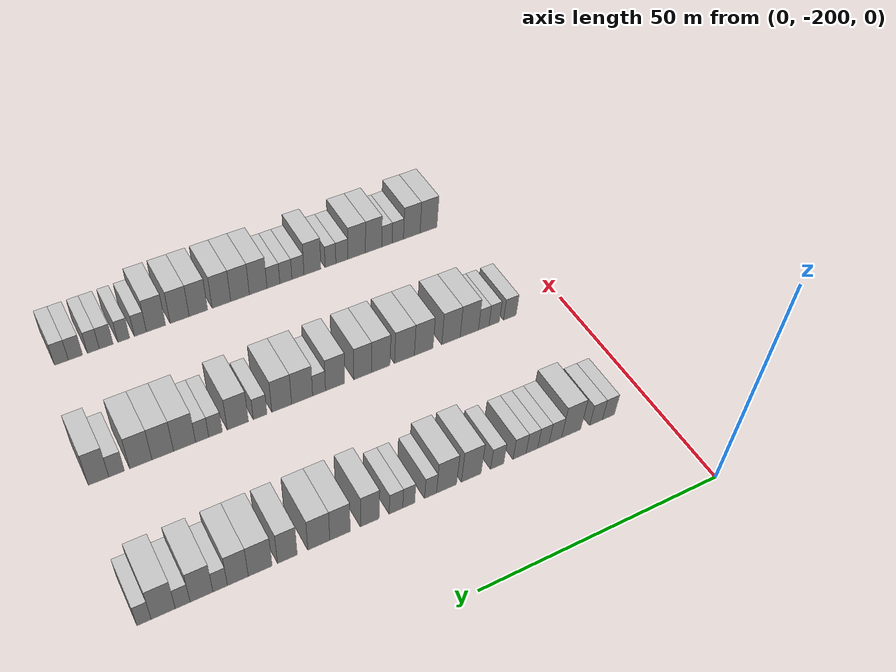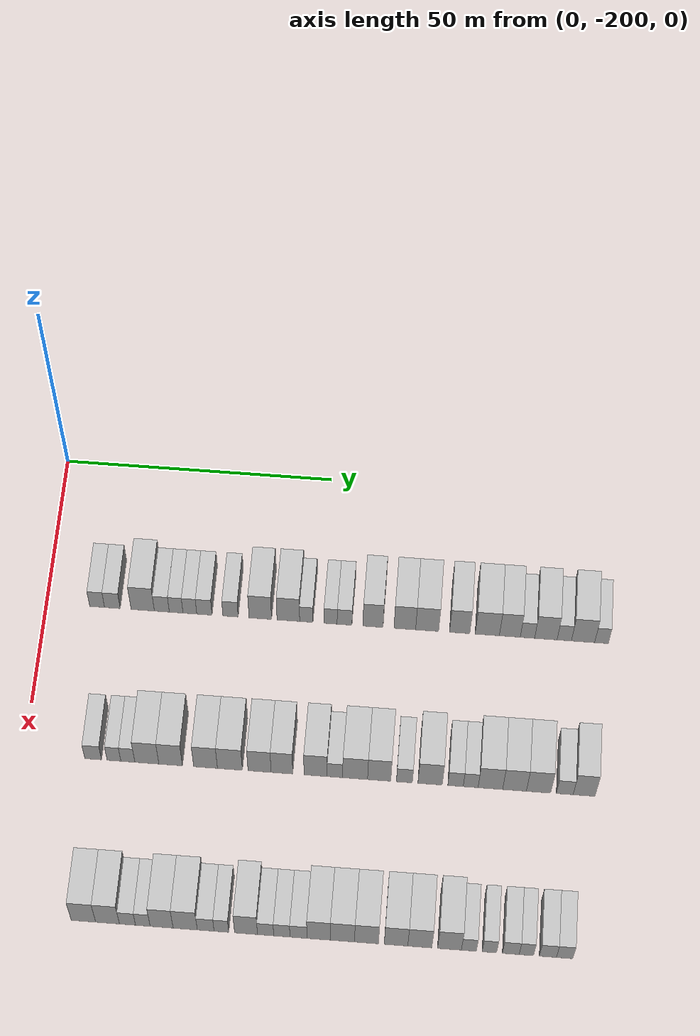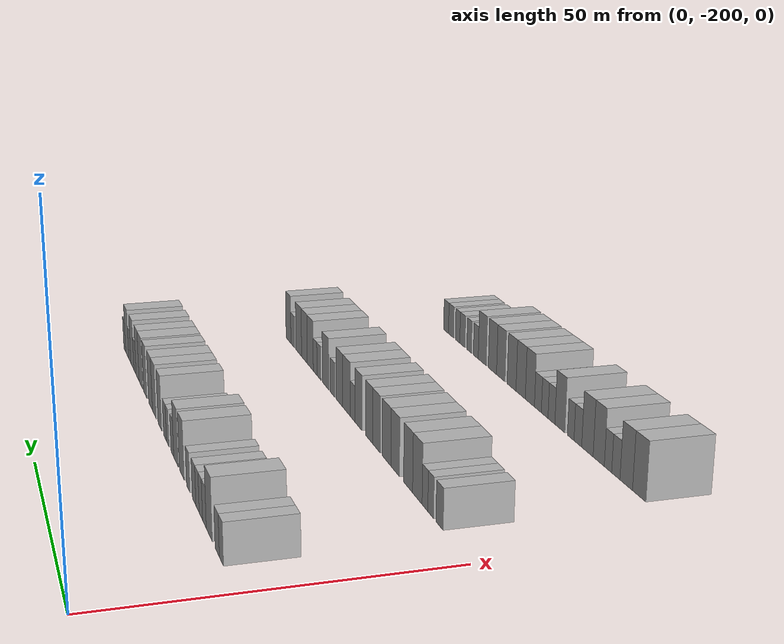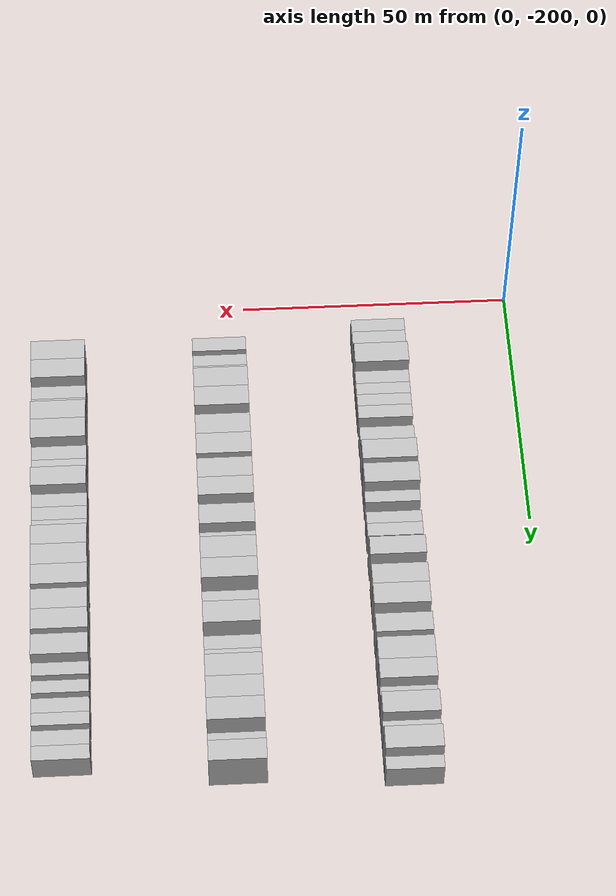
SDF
<sdf version="1.6">
 <world name="default">
  <model name="building_23">
   <static>1</static>
   <pose>25.0000 -190.7034 0 0.000000 0.000000 0.000000</pose>
   <link name="link">
    <pose>0 0 3.00 0 0 0</pose>
    <collision name="collision"><geometry><box><size>10.0000 2.7444 6.0000</size></box></geometry></collision>
    <visual name="visual">
     <cast_shadows>0</cast_shadows>
     <geometry><box><size>10.0000 2.7444 6.0000</size></box></geometry>
     <material>
      <script>
       <uri>model://HANNAS_wall/materials/scripts</uri>
       <uri>model://HANNAS_wall/materials/textures</uri>
       <name>vrc/HANNAS_wall</name>
      </script>
     </material>
    </visual>
   </link>
  </model>
  <model name="building_24">
   <static>1</static>
   <pose>25.0000 -187.8845 0 0.000000 0.000000 0.000000</pose>
   <link name="link">
    <pose>0 0 3.00 0 0 0</pose>
    <collision name="collision"><geometry><box><size>10.0000 2.8935 6.0000</size></box></geometry></collision>
    <visual name="visual">
     <cast_shadows>0</cast_shadows>
     <geometry><box><size>10.0000 2.8935 6.0000</size></box></geometry>
     <material>
      <script>
       <uri>model://HANNAS_wall/materials/scripts</uri>
       <uri>model://HANNAS_wall/materials/textures</uri>
       <name>vrc/HANNAS_wall</name>
      </script>
     </material>
    </visual>
   </link>
  </model>
  <model name="building_25">
   <static>1</static>
   <pose>25.0000 -182.2950 0 0.000000 0.000000 0.000000</pose>
   <link name="link">
    <pose>0 0 4.50 0 0 0</pose>
    <collision name="collision"><geometry><box><size>10.0000 4.2855 9.0000</size></box></geometry></collision>
    <visual name="visual">
     <cast_shadows>0</cast_shadows>
     <geometry><box><size>10.0000 4.2855 9.0000</size></box></geometry>
     <material>
      <script>
       <uri>model://HANNAS_wall/materials/scripts</uri>
       <uri>model://HANNAS_wall/materials/textures</uri>
       <name>vrc/HANNAS_wall</name>
      </script>
     </material>
    </visual>
   </link>
  </model>
  <model name="building_26">
   <static>1</static>
   <pose>25.0000 -178.7740 0 0.000000 0.000000 0.000000</pose>
   <link name="link">
    <pose>0 0 3.00 0 0 0</pose>
    <collision name="collision"><geometry><box><size>10.0000 2.7564 6.0000</size></box></geometry></collision>
    <visual name="visual">
     <cast_shadows>0</cast_shadows>
     <geometry><box><size>10.0000 2.7564 6.0000</size></box></geometry>
     <material>
      <script>
       <uri>model://HANNAS_wall/materials/scripts</uri>
       <uri>model://HANNAS_wall/materials/textures</uri>
       <name>vrc/HANNAS_wall</name>
      </script>
     </material>
    </visual>
   </link>
  </model>
  <model name="building_27">
   <static>1</static>
   <pose>25.0000 -176.1398 0 0.000000 0.000000 0.000000</pose>
   <link name="link">
    <pose>0 0 3.00 0 0 0</pose>
    <collision name="collision"><geometry><box><size>10.0000 2.5118 6.0000</size></box></geometry></collision>
    <visual name="visual">
     <cast_shadows>0</cast_shadows>
     <geometry><box><size>10.0000 2.5118 6.0000</size></box></geometry>
     <material>
      <script>
       <uri>model://HANNAS_wall/materials/scripts</uri>
       <uri>model://HANNAS_wall/materials/textures</uri>
       <name>vrc/HANNAS_wall</name>
      </script>
     </material>
    </visual>
   </link>
  </model>
  <model name="building_28">
   <static>1</static>
   <pose>25.0000 -173.6152 0 0.000000 0.000000 0.000000</pose>
   <link name="link">
    <pose>0 0 3.00 0 0 0</pose>
    <collision name="collision"><geometry><box><size>10.0000 2.5375 6.0000</size></box></geometry></collision>
    <visual name="visual">
     <cast_shadows>0</cast_shadows>
     <geometry><box><size>10.0000 2.5375 6.0000</size></box></geometry>
     <material>
      <script>
       <uri>model://HANNAS_wall/materials/scripts</uri>
       <uri>model://HANNAS_wall/materials/textures</uri>
       <name>vrc/HANNAS_wall</name>
      </script>
     </material>
    </visual>
   </link>
  </model>
  <model name="building_29">
   <static>1</static>
   <pose>25.0000 -170.9428 0 0.000000 0.000000 0.000000</pose>
   <link name="link">
    <pose>0 0 3.00 0 0 0</pose>
    <collision name="collision"><geometry><box><size>10.0000 2.8074 6.0000</size></box></geometry></collision>
    <visual name="visual">
     <cast_shadows>0</cast_shadows>
     <geometry><box><size>10.0000 2.8074 6.0000</size></box></geometry>
     <material>
      <script>
       <uri>model://HANNAS_wall/materials/scripts</uri>
       <uri>model://HANNAS_wall/materials/textures</uri>
       <name>vrc/HANNAS_wall</name>
      </script>
     </material>
    </visual>
   </link>
  </model>
  <model name="building_30">
   <static>1</static>
   <pose>25.0000 -166.1350 0 0.000000 0.000000 0.000000</pose>
   <link name="link">
    <pose>0 0 3.00 0 0 0</pose>
    <collision name="collision"><geometry><box><size>10.0000 2.8080 6.0000</size></box></geometry></collision>
    <visual name="visual">
     <cast_shadows>0</cast_shadows>
     <geometry><box><size>10.0000 2.8080 6.0000</size></box></geometry>
     <material>
      <script>
       <uri>model://HANNAS_wall/materials/scripts</uri>
       <uri>model://HANNAS_wall/materials/textures</uri>
       <name>vrc/HANNAS_wall</name>
      </script>
     </material>
    </visual>
   </link>
  </model>
  <model name="building_31">
   <static>1</static>
   <pose>25.0000 -160.6640 0 0.000000 0.000000 0.000000</pose>
   <link name="link">
    <pose>0 0 4.50 0 0 0</pose>
    <collision name="collision"><geometry><box><size>10.0000 4.1341 9.0000</size></box></geometry></collision>
    <visual name="visual">
     <cast_shadows>0</cast_shadows>
     <geometry><box><size>10.0000 4.1341 9.0000</size></box></geometry>
     <material>
      <script>
       <uri>model://HANNAS_wall/materials/scripts</uri>
       <uri>model://HANNAS_wall/materials/textures</uri>
       <name>vrc/HANNAS_wall</name>
      </script>
     </material>
    </visual>
   </link>
  </model>
  <model name="building_32">
   <static>1</static>
   <pose>25.0000 -155.5202 0 0.000000 0.000000 0.000000</pose>
   <link name="link">
    <pose>0 0 4.50 0 0 0</pose>
    <collision name="collision"><geometry><box><size>10.0000 4.1533 9.0000</size></box></geometry></collision>
    <visual name="visual">
     <cast_shadows>0</cast_shadows>
     <geometry><box><size>10.0000 4.1533 9.0000</size></box></geometry>
     <material>
      <script>
       <uri>model://HANNAS_wall/materials/scripts</uri>
       <uri>model://HANNAS_wall/materials/textures</uri>
       <name>vrc/HANNAS_wall</name>
      </script>
     </material>
    </visual>
   </link>
  </model>
  <model name="building_33">
   <static>1</static>
   <pose>25.0000 -152.2202 0 0.000000 0.000000 0.000000</pose>
   <link name="link">
    <pose>0 0 3.00 0 0 0</pose>
    <collision name="collision"><geometry><box><size>10.0000 2.4468 6.0000</size></box></geometry></collision>
    <visual name="visual">
     <cast_shadows>0</cast_shadows>
     <geometry><box><size>10.0000 2.4468 6.0000</size></box></geometry>
     <material>
      <script>
       <uri>model://HANNAS_wall/materials/scripts</uri>
       <uri>model://HANNAS_wall/materials/textures</uri>
       <name>vrc/HANNAS_wall</name>
      </script>
     </material>
    </visual>
   </link>
  </model>
  <model name="building_34">
   <static>1</static>
   <pose>25.0000 -147.7847 0 0.000000 0.000000 0.000000</pose>
   <link name="link">
    <pose>0 0 3.00 0 0 0</pose>
    <collision name="collision"><geometry><box><size>10.0000 2.4242 6.0000</size></box></geometry></collision>
    <visual name="visual">
     <cast_shadows>0</cast_shadows>
     <geometry><box><size>10.0000 2.4242 6.0000</size></box></geometry>
     <material>
      <script>
       <uri>model://HANNAS_wall/materials/scripts</uri>
       <uri>model://HANNAS_wall/materials/textures</uri>
       <name>vrc/HANNAS_wall</name>
      </script>
     </material>
    </visual>
   </link>
  </model>
  <model name="building_35">
   <static>1</static>
   <pose>25.0000 -145.2137 0 0.000000 0.000000 0.000000</pose>
   <link name="link">
    <pose>0 0 3.00 0 0 0</pose>
    <collision name="collision"><geometry><box><size>10.0000 2.7177 6.0000</size></box></geometry></collision>
    <visual name="visual">
     <cast_shadows>0</cast_shadows>
     <geometry><box><size>10.0000 2.7177 6.0000</size></box></geometry>
     <material>
      <script>
       <uri>model://HANNAS_wall/materials/scripts</uri>
       <uri>model://HANNAS_wall/materials/textures</uri>
       <name>vrc/HANNAS_wall</name>
      </script>
     </material>
    </visual>
   </link>
  </model>
  <model name="building_36">
   <static>1</static>
   <pose>25.0000 -140.0090 0 0.000000 0.000000 0.000000</pose>
   <link name="link">
    <pose>0 0 4.50 0 0 0</pose>
    <collision name="collision"><geometry><box><size>10.0000 3.6917 9.0000</size></box></geometry></collision>
    <visual name="visual">
     <cast_shadows>0</cast_shadows>
     <geometry><box><size>10.0000 3.6917 9.0000</size></box></geometry>
     <material>
      <script>
       <uri>model://HANNAS_wall/materials/scripts</uri>
       <uri>model://HANNAS_wall/materials/textures</uri>
       <name>vrc/HANNAS_wall</name>
      </script>
     </material>
    </visual>
   </link>
  </model>
  <model name="building_37">
   <static>1</static>
   <pose>25.0000 -134.1847 0 0.000000 0.000000 0.000000</pose>
   <link name="link">
    <pose>0 0 4.50 0 0 0</pose>
    <collision name="collision"><geometry><box><size>10.0000 3.9570 9.0000</size></box></geometry></collision>
    <visual name="visual">
     <cast_shadows>0</cast_shadows>
     <geometry><box><size>10.0000 3.9570 9.0000</size></box></geometry>
     <material>
      <script>
       <uri>model://HANNAS_wall/materials/scripts</uri>
       <uri>model://HANNAS_wall/materials/textures</uri>
       <name>vrc/HANNAS_wall</name>
      </script>
     </material>
    </visual>
   </link>
  </model>
  <model name="building_38">
   <static>1</static>
   <pose>25.0000 -130.1100 0 0.000000 0.000000 0.000000</pose>
   <link name="link">
    <pose>0 0 4.50 0 0 0</pose>
    <collision name="collision"><geometry><box><size>10.0000 4.1923 9.0000</size></box></geometry></collision>
    <visual name="visual">
     <cast_shadows>0</cast_shadows>
     <geometry><box><size>10.0000 4.1923 9.0000</size></box></geometry>
     <material>
      <script>
       <uri>model://HANNAS_wall/materials/scripts</uri>
       <uri>model://HANNAS_wall/materials/textures</uri>
       <name>vrc/HANNAS_wall</name>
      </script>
     </material>
    </visual>
   </link>
  </model>
  <model name="building_39">
   <static>1</static>
   <pose>25.0000 -124.1673 0 0.000000 0.000000 0.000000</pose>
   <link name="link">
    <pose>0 0 4.50 0 0 0</pose>
    <collision name="collision"><geometry><box><size>10.0000 3.6933 9.0000</size></box></geometry></collision>
    <visual name="visual">
     <cast_shadows>0</cast_shadows>
     <geometry><box><size>10.0000 3.6933 9.0000</size></box></geometry>
     <material>
      <script>
       <uri>model://HANNAS_wall/materials/scripts</uri>
       <uri>model://HANNAS_wall/materials/textures</uri>
       <name>vrc/HANNAS_wall</name>
      </script>
     </material>
    </visual>
   </link>
  </model>
  <model name="building_40">
   <static>1</static>
   <pose>25.0000 -119.1183 0 0.000000 0.000000 0.000000</pose>
   <link name="link">
    <pose>0 0 4.50 0 0 0</pose>
    <collision name="collision"><geometry><box><size>10.0000 4.4046 9.0000</size></box></geometry></collision>
    <visual name="visual">
     <cast_shadows>0</cast_shadows>
     <geometry><box><size>10.0000 4.4046 9.0000</size></box></geometry>
     <material>
      <script>
       <uri>model://HANNAS_wall/materials/scripts</uri>
       <uri>model://HANNAS_wall/materials/textures</uri>
       <name>vrc/HANNAS_wall</name>
      </script>
     </material>
    </visual>
   </link>
  </model>
  <model name="building_41">
   <static>1</static>
   <pose>25.0000 -115.0124 0 0.000000 0.000000 0.000000</pose>
   <link name="link">
    <pose>0 0 4.50 0 0 0</pose>
    <collision name="collision"><geometry><box><size>10.0000 3.8073 9.0000</size></box></geometry></collision>
    <visual name="visual">
     <cast_shadows>0</cast_shadows>
     <geometry><box><size>10.0000 3.8073 9.0000</size></box></geometry>
     <material>
      <script>
       <uri>model://HANNAS_wall/materials/scripts</uri>
       <uri>model://HANNAS_wall/materials/textures</uri>
       <name>vrc/HANNAS_wall</name>
      </script>
     </material>
    </visual>
   </link>
  </model>
  <model name="building_42">
   <static>1</static>
   <pose>25.0000 -111.7990 0 0.000000 0.000000 0.000000</pose>
   <link name="link">
    <pose>0 0 3.00 0 0 0</pose>
    <collision name="collision"><geometry><box><size>10.0000 2.6195 6.0000</size></box></geometry></collision>
    <visual name="visual">
     <cast_shadows>0</cast_shadows>
     <geometry><box><size>10.0000 2.6195 6.0000</size></box></geometry>
     <material>
      <script>
       <uri>model://HANNAS_wall/materials/scripts</uri>
       <uri>model://HANNAS_wall/materials/textures</uri>
       <name>vrc/HANNAS_wall</name>
      </script>
     </material>
    </visual>
   </link>
  </model>
  <model name="building_43">
   <static>1</static>
   <pose>25.0000 -108.4423 0 0.000000 0.000000 0.000000</pose>
   <link name="link">
    <pose>0 0 4.50 0 0 0</pose>
    <collision name="collision"><geometry><box><size>10.0000 4.0939 9.0000</size></box></geometry></collision>
    <visual name="visual">
     <cast_shadows>0</cast_shadows>
     <geometry><box><size>10.0000 4.0939 9.0000</size></box></geometry>
     <material>
      <script>
       <uri>model://HANNAS_wall/materials/scripts</uri>
       <uri>model://HANNAS_wall/materials/textures</uri>
       <name>vrc/HANNAS_wall</name>
      </script>
     </material>
    </visual>
   </link>
  </model>
  <model name="building_44">
   <static>1</static>
   <pose>25.0000 -105.0941 0 0.000000 0.000000 0.000000</pose>
   <link name="link">
    <pose>0 0 3.00 0 0 0</pose>
    <collision name="collision"><geometry><box><size>10.0000 2.6026 6.0000</size></box></geometry></collision>
    <visual name="visual">
     <cast_shadows>0</cast_shadows>
     <geometry><box><size>10.0000 2.6026 6.0000</size></box></geometry>
     <material>
      <script>
       <uri>model://HANNAS_wall/materials/scripts</uri>
       <uri>model://HANNAS_wall/materials/textures</uri>
       <name>vrc/HANNAS_wall</name>
      </script>
     </material>
    </visual>
   </link>
  </model>
  <model name="building_45">
   <static>1</static>
   <pose>25.0000 -101.6720 0 0.000000 0.000000 0.000000</pose>
   <link name="link">
    <pose>0 0 4.50 0 0 0</pose>
    <collision name="collision"><geometry><box><size>10.0000 4.2416 9.0000</size></box></geometry></collision>
    <visual name="visual">
     <cast_shadows>0</cast_shadows>
     <geometry><box><size>10.0000 4.2416 9.0000</size></box></geometry>
     <material>
      <script>
       <uri>model://HANNAS_wall/materials/scripts</uri>
       <uri>model://HANNAS_wall/materials/textures</uri>
       <name>vrc/HANNAS_wall</name>
      </script>
     </material>
    </visual>
   </link>
  </model>
  <model name="building_46">
   <static>1</static>
   <pose>25.0000 -98.3125 0 0.000000 0.000000 0.000000</pose>
   <link name="link">
    <pose>0 0 3.00 0 0 0</pose>
    <collision name="collision"><geometry><box><size>10.0000 2.4775 6.0000</size></box></geometry></collision>
    <visual name="visual">
     <cast_shadows>0</cast_shadows>
     <geometry><box><size>10.0000 2.4775 6.0000</size></box></geometry>
     <material>
      <script>
       <uri>model://HANNAS_wall/materials/scripts</uri>
       <uri>model://HANNAS_wall/materials/textures</uri>
       <name>vrc/HANNAS_wall</name>
      </script>
     </material>
    </visual>
   </link>
  </model>
  <model name="building_165">
   <static>1</static>
   <pose>55.0000 -187.7114 0 0.000000 0.000000 0.000000</pose>
   <link name="link">
    <pose>0 0 3.00 0 0 0</pose>
    <collision name="collision"><geometry><box><size>10.0000 2.9925 6.0000</size></box></geometry></collision>
    <visual name="visual">
     <cast_shadows>0</cast_shadows>
     <geometry><box><size>10.0000 2.9925 6.0000</size></box></geometry>
     <material>
      <script>
       <uri>model://HANNAS_wall/materials/scripts</uri>
       <uri>model://HANNAS_wall/materials/textures</uri>
       <name>vrc/HANNAS_wall</name>
      </script>
     </material>
    </visual>
   </link>
  </model>
  <model name="building_166">
   <static>1</static>
   <pose>55.0000 -183.9885 0 0.000000 0.000000 0.000000</pose>
   <link name="link">
    <pose>0 0 3.00 0 0 0</pose>
    <collision name="collision"><geometry><box><size>10.0000 2.4534 6.0000</size></box></geometry></collision>
    <visual name="visual">
     <cast_shadows>0</cast_shadows>
     <geometry><box><size>10.0000 2.4534 6.0000</size></box></geometry>
     <material>
      <script>
       <uri>model://HANNAS_wall/materials/scripts</uri>
       <uri>model://HANNAS_wall/materials/textures</uri>
       <name>vrc/HANNAS_wall</name>
      </script>
     </material>
    </visual>
   </link>
  </model>
  <model name="building_167">
   <static>1</static>
   <pose>55.0000 -181.5133 0 0.000000 0.000000 0.000000</pose>
   <link name="link">
    <pose>0 0 3.00 0 0 0</pose>
    <collision name="collision"><geometry><box><size>10.0000 2.4971 6.0000</size></box></geometry></collision>
    <visual name="visual">
     <cast_shadows>0</cast_shadows>
     <geometry><box><size>10.0000 2.4971 6.0000</size></box></geometry>
     <material>
      <script>
       <uri>model://HANNAS_wall/materials/scripts</uri>
       <uri>model://HANNAS_wall/materials/textures</uri>
       <name>vrc/HANNAS_wall</name>
      </script>
     </material>
    </visual>
   </link>
  </model>
  <model name="building_168">
   <static>1</static>
   <pose>55.0000 -178.1233 0 0.000000 0.000000 0.000000</pose>
   <link name="link">
    <pose>0 0 4.50 0 0 0</pose>
    <collision name="collision"><geometry><box><size>10.0000 4.2830 9.0000</size></box></geometry></collision>
    <visual name="visual">
     <cast_shadows>0</cast_shadows>
     <geometry><box><size>10.0000 4.2830 9.0000</size></box></geometry>
     <material>
      <script>
       <uri>model://HANNAS_wall/materials/scripts</uri>
       <uri>model://HANNAS_wall/materials/textures</uri>
       <name>vrc/HANNAS_wall</name>
      </script>
     </material>
    </visual>
   </link>
  </model>
  <model name="building_169">
   <static>1</static>
   <pose>55.0000 -173.8754 0 0.000000 0.000000 0.000000</pose>
   <link name="link">
    <pose>0 0 4.50 0 0 0</pose>
    <collision name="collision"><geometry><box><size>10.0000 4.2128 9.0000</size></box></geometry></collision>
    <visual name="visual">
     <cast_shadows>0</cast_shadows>
     <geometry><box><size>10.0000 4.2128 9.0000</size></box></geometry>
     <material>
      <script>
       <uri>model://HANNAS_wall/materials/scripts</uri>
       <uri>model://HANNAS_wall/materials/textures</uri>
       <name>vrc/HANNAS_wall</name>
      </script>
     </material>
    </visual>
   </link>
  </model>
  <model name="building_170">
   <static>1</static>
   <pose>55.0000 -167.6560 0 0.000000 0.000000 0.000000</pose>
   <link name="link">
    <pose>0 0 4.50 0 0 0</pose>
    <collision name="collision"><geometry><box><size>10.0000 4.2259 9.0000</size></box></geometry></collision>
    <visual name="visual">
     <cast_shadows>0</cast_shadows>
     <geometry><box><size>10.0000 4.2259 9.0000</size></box></geometry>
     <material>
      <script>
       <uri>model://HANNAS_wall/materials/scripts</uri>
       <uri>model://HANNAS_wall/materials/textures</uri>
       <name>vrc/HANNAS_wall</name>
      </script>
     </material>
    </visual>
   </link>
  </model>
  <model name="building_171">
   <static>1</static>
   <pose>55.0000 -163.3208 0 0.000000 0.000000 0.000000</pose>
   <link name="link">
    <pose>0 0 4.50 0 0 0</pose>
    <collision name="collision"><geometry><box><size>10.0000 4.4445 9.0000</size></box></geometry></collision>
    <visual name="visual">
     <cast_shadows>0</cast_shadows>
     <geometry><box><size>10.0000 4.4445 9.0000</size></box></geometry>
     <material>
      <script>
       <uri>model://HANNAS_wall/materials/scripts</uri>
       <uri>model://HANNAS_wall/materials/textures</uri>
       <name>vrc/HANNAS_wall</name>
      </script>
     </material>
    </visual>
   </link>
  </model>
  <model name="building_172">
   <static>1</static>
   <pose>55.0000 -158.0532 0 0.000000 0.000000 0.000000</pose>
   <link name="link">
    <pose>0 0 4.50 0 0 0</pose>
    <collision name="collision"><geometry><box><size>10.0000 4.0907 9.0000</size></box></geometry></collision>
    <visual name="visual">
     <cast_shadows>0</cast_shadows>
     <geometry><box><size>10.0000 4.0907 9.0000</size></box></geometry>
     <material>
      <script>
       <uri>model://HANNAS_wall/materials/scripts</uri>
       <uri>model://HANNAS_wall/materials/textures</uri>
       <name>vrc/HANNAS_wall</name>
      </script>
     </material>
    </visual>
   </link>
  </model>
  <model name="building_173">
   <static>1</static>
   <pose>55.0000 -154.0807 0 0.000000 0.000000 0.000000</pose>
   <link name="link">
    <pose>0 0 4.50 0 0 0</pose>
    <collision name="collision"><geometry><box><size>10.0000 3.8542 9.0000</size></box></geometry></collision>
    <visual name="visual">
     <cast_shadows>0</cast_shadows>
     <geometry><box><size>10.0000 3.8542 9.0000</size></box></geometry>
     <material>
      <script>
       <uri>model://HANNAS_wall/materials/scripts</uri>
       <uri>model://HANNAS_wall/materials/textures</uri>
       <name>vrc/HANNAS_wall</name>
      </script>
     </material>
    </visual>
   </link>
  </model>
  <model name="building_174">
   <static>1</static>
   <pose>55.0000 -148.0999 0 0.000000 0.000000 0.000000</pose>
   <link name="link">
    <pose>0 0 4.50 0 0 0</pose>
    <collision name="collision"><geometry><box><size>10.0000 4.1074 9.0000</size></box></geometry></collision>
    <visual name="visual">
     <cast_shadows>0</cast_shadows>
     <geometry><box><size>10.0000 4.1074 9.0000</size></box></geometry>
     <material>
      <script>
       <uri>model://HANNAS_wall/materials/scripts</uri>
       <uri>model://HANNAS_wall/materials/textures</uri>
       <name>vrc/HANNAS_wall</name>
      </script>
     </material>
    </visual>
   </link>
  </model>
  <model name="building_175">
   <static>1</static>
   <pose>55.0000 -144.6754 0 0.000000 0.000000 0.000000</pose>
   <link name="link">
    <pose>0 0 3.00 0 0 0</pose>
    <collision name="collision"><geometry><box><size>10.0000 2.7416 6.0000</size></box></geometry></collision>
    <visual name="visual">
     <cast_shadows>0</cast_shadows>
     <geometry><box><size>10.0000 2.7416 6.0000</size></box></geometry>
     <material>
      <script>
       <uri>model://HANNAS_wall/materials/scripts</uri>
       <uri>model://HANNAS_wall/materials/textures</uri>
       <name>vrc/HANNAS_wall</name>
      </script>
     </material>
    </visual>
   </link>
  </model>
  <model name="building_176">
   <static>1</static>
   <pose>55.0000 -141.0858 0 0.000000 0.000000 0.000000</pose>
   <link name="link">
    <pose>0 0 4.50 0 0 0</pose>
    <collision name="collision"><geometry><box><size>10.0000 4.4376 9.0000</size></box></geometry></collision>
    <visual name="visual">
     <cast_shadows>0</cast_shadows>
     <geometry><box><size>10.0000 4.4376 9.0000</size></box></geometry>
     <material>
      <script>
       <uri>model://HANNAS_wall/materials/scripts</uri>
       <uri>model://HANNAS_wall/materials/textures</uri>
       <name>vrc/HANNAS_wall</name>
      </script>
     </material>
    </visual>
   </link>
  </model>
  <model name="building_177">
   <static>1</static>
   <pose>55.0000 -136.8143 0 0.000000 0.000000 0.000000</pose>
   <link name="link">
    <pose>0 0 4.50 0 0 0</pose>
    <collision name="collision"><geometry><box><size>10.0000 4.1054 9.0000</size></box></geometry></collision>
    <visual name="visual">
     <cast_shadows>0</cast_shadows>
     <geometry><box><size>10.0000 4.1054 9.0000</size></box></geometry>
     <material>
      <script>
       <uri>model://HANNAS_wall/materials/scripts</uri>
       <uri>model://HANNAS_wall/materials/textures</uri>
       <name>vrc/HANNAS_wall</name>
      </script>
     </material>
    </visual>
   </link>
  </model>
  <model name="building_178">
   <static>1</static>
   <pose>55.0000 -132.3516 0 0.000000 0.000000 0.000000</pose>
   <link name="link">
    <pose>0 0 3.00 0 0 0</pose>
    <collision name="collision"><geometry><box><size>10.0000 2.8199 6.0000</size></box></geometry></collision>
    <visual name="visual">
     <cast_shadows>0</cast_shadows>
     <geometry><box><size>10.0000 2.8199 6.0000</size></box></geometry>
     <material>
      <script>
       <uri>model://HANNAS_wall/materials/scripts</uri>
       <uri>model://HANNAS_wall/materials/textures</uri>
       <name>vrc/HANNAS_wall</name>
      </script>
     </material>
    </visual>
   </link>
  </model>
  <model name="building_179">
   <static>1</static>
   <pose>55.0000 -127.7955 0 0.000000 0.000000 0.000000</pose>
   <link name="link">
    <pose>0 0 4.50 0 0 0</pose>
    <collision name="collision"><geometry><box><size>10.0000 4.2923 9.0000</size></box></geometry></collision>
    <visual name="visual">
     <cast_shadows>0</cast_shadows>
     <geometry><box><size>10.0000 4.2923 9.0000</size></box></geometry>
     <material>
      <script>
       <uri>model://HANNAS_wall/materials/scripts</uri>
       <uri>model://HANNAS_wall/materials/textures</uri>
       <name>vrc/HANNAS_wall</name>
      </script>
     </material>
    </visual>
   </link>
  </model>
  <model name="building_180">
   <static>1</static>
   <pose>55.0000 -123.2918 0 0.000000 0.000000 0.000000</pose>
   <link name="link">
    <pose>0 0 3.00 0 0 0</pose>
    <collision name="collision"><geometry><box><size>10.0000 2.7150 6.0000</size></box></geometry></collision>
    <visual name="visual">
     <cast_shadows>0</cast_shadows>
     <geometry><box><size>10.0000 2.7150 6.0000</size></box></geometry>
     <material>
      <script>
       <uri>model://HANNAS_wall/materials/scripts</uri>
       <uri>model://HANNAS_wall/materials/textures</uri>
       <name>vrc/HANNAS_wall</name>
      </script>
     </material>
    </visual>
   </link>
  </model>
  <model name="building_181">
   <static>1</static>
   <pose>55.0000 -120.6269 0 0.000000 0.000000 0.000000</pose>
   <link name="link">
    <pose>0 0 3.00 0 0 0</pose>
    <collision name="collision"><geometry><box><size>10.0000 2.6148 6.0000</size></box></geometry></collision>
    <visual name="visual">
     <cast_shadows>0</cast_shadows>
     <geometry><box><size>10.0000 2.6148 6.0000</size></box></geometry>
     <material>
      <script>
       <uri>model://HANNAS_wall/materials/scripts</uri>
       <uri>model://HANNAS_wall/materials/textures</uri>
       <name>vrc/HANNAS_wall</name>
      </script>
     </material>
    </visual>
   </link>
  </model>
  <model name="building_182">
   <static>1</static>
   <pose>55.0000 -117.1505 0 0.000000 0.000000 0.000000</pose>
   <link name="link">
    <pose>0 0 4.50 0 0 0</pose>
    <collision name="collision"><geometry><box><size>10.0000 4.3380 9.0000</size></box></geometry></collision>
    <visual name="visual">
     <cast_shadows>0</cast_shadows>
     <geometry><box><size>10.0000 4.3380 9.0000</size></box></geometry>
     <material>
      <script>
       <uri>model://HANNAS_wall/materials/scripts</uri>
       <uri>model://HANNAS_wall/materials/textures</uri>
       <name>vrc/HANNAS_wall</name>
      </script>
     </material>
    </visual>
   </link>
  </model>
  <model name="building_183">
   <static>1</static>
   <pose>55.0000 -112.8837 0 0.000000 0.000000 0.000000</pose>
   <link name="link">
    <pose>0 0 4.50 0 0 0</pose>
    <collision name="collision"><geometry><box><size>10.0000 4.1955 9.0000</size></box></geometry></collision>
    <visual name="visual">
     <cast_shadows>0</cast_shadows>
     <geometry><box><size>10.0000 4.1955 9.0000</size></box></geometry>
     <material>
      <script>
       <uri>model://HANNAS_wall/materials/scripts</uri>
       <uri>model://HANNAS_wall/materials/textures</uri>
       <name>vrc/HANNAS_wall</name>
      </script>
     </material>
    </visual>
   </link>
  </model>
  <model name="building_184">
   <static>1</static>
   <pose>55.0000 -108.6369 0 0.000000 0.000000 0.000000</pose>
   <link name="link">
    <pose>0 0 4.50 0 0 0</pose>
    <collision name="collision"><geometry><box><size>10.0000 4.2981 9.0000</size></box></geometry></collision>
    <visual name="visual">
     <cast_shadows>0</cast_shadows>
     <geometry><box><size>10.0000 4.2981 9.0000</size></box></geometry>
     <material>
      <script>
       <uri>model://HANNAS_wall/materials/scripts</uri>
       <uri>model://HANNAS_wall/materials/textures</uri>
       <name>vrc/HANNAS_wall</name>
      </script>
     </material>
    </visual>
   </link>
  </model>
  <model name="building_185">
   <static>1</static>
   <pose>55.0000 -104.0083 0 0.000000 0.000000 0.000000</pose>
   <link name="link">
    <pose>0 0 3.00 0 0 0</pose>
    <collision name="collision"><geometry><box><size>10.0000 2.9592 6.0000</size></box></geometry></collision>
    <visual name="visual">
     <cast_shadows>0</cast_shadows>
     <geometry><box><size>10.0000 2.9592 6.0000</size></box></geometry>
     <material>
      <script>
       <uri>model://HANNAS_wall/materials/scripts</uri>
       <uri>model://HANNAS_wall/materials/textures</uri>
       <name>vrc/HANNAS_wall</name>
      </script>
     </material>
    </visual>
   </link>
  </model>
  <model name="building_186">
   <static>1</static>
   <pose>55.0000 -100.6029 0 0.000000 0.000000 0.000000</pose>
   <link name="link">
    <pose>0 0 4.50 0 0 0</pose>
    <collision name="collision"><geometry><box><size>10.0000 3.8516 9.0000</size></box></geometry></collision>
    <visual name="visual">
     <cast_shadows>0</cast_shadows>
     <geometry><box><size>10.0000 3.8516 9.0000</size></box></geometry>
     <material>
      <script>
       <uri>model://HANNAS_wall/materials/scripts</uri>
       <uri>model://HANNAS_wall/materials/textures</uri>
       <name>vrc/HANNAS_wall</name>
      </script>
     </material>
    </visual>
   </link>
  </model>
  <model name="building_311">
   <static>1</static>
   <pose>85.0000 -185.6781 0 0.000000 0.000000 0.000000</pose>
   <link name="link">
    <pose>0 0 4.50 0 0 0</pose>
    <collision name="collision"><geometry><box><size>10.0000 4.2297 9.0000</size></box></geometry></collision>
    <visual name="visual">
     <cast_shadows>0</cast_shadows>
     <geometry><box><size>10.0000 4.2297 9.0000</size></box></geometry>
     <material>
      <script>
       <uri>model://HANNAS_wall/materials/scripts</uri>
       <uri>model://HANNAS_wall/materials/textures</uri>
       <name>vrc/HANNAS_wall</name>
      </script>
     </material>
    </visual>
   </link>
  </model>
  <model name="building_312">
   <static>1</static>
   <pose>85.0000 -181.5111 0 0.000000 0.000000 0.000000</pose>
   <link name="link">
    <pose>0 0 4.50 0 0 0</pose>
    <collision name="collision"><geometry><box><size>10.0000 4.1044 9.0000</size></box></geometry></collision>
    <visual name="visual">
     <cast_shadows>0</cast_shadows>
     <geometry><box><size>10.0000 4.1044 9.0000</size></box></geometry>
     <material>
      <script>
       <uri>model://HANNAS_wall/materials/scripts</uri>
       <uri>model://HANNAS_wall/materials/textures</uri>
       <name>vrc/HANNAS_wall</name>
      </script>
     </material>
    </visual>
   </link>
  </model>
  <model name="building_313">
   <static>1</static>
   <pose>85.0000 -178.0632 0 0.000000 0.000000 0.000000</pose>
   <link name="link">
    <pose>0 0 3.00 0 0 0</pose>
    <collision name="collision"><geometry><box><size>10.0000 2.7914 6.0000</size></box></geometry></collision>
    <visual name="visual">
     <cast_shadows>0</cast_shadows>
     <geometry><box><size>10.0000 2.7914 6.0000</size></box></geometry>
     <material>
      <script>
       <uri>model://HANNAS_wall/materials/scripts</uri>
       <uri>model://HANNAS_wall/materials/textures</uri>
       <name>vrc/HANNAS_wall</name>
      </script>
     </material>
    </visual>
   </link>
  </model>
  <model name="building_314">
   <static>1</static>
   <pose>85.0000 -175.4052 0 0.000000 0.000000 0.000000</pose>
   <link name="link">
    <pose>0 0 3.00 0 0 0</pose>
    <collision name="collision"><geometry><box><size>10.0000 2.5246 6.0000</size></box></geometry></collision>
    <visual name="visual">
     <cast_shadows>0</cast_shadows>
     <geometry><box><size>10.0000 2.5246 6.0000</size></box></geometry>
     <material>
      <script>
       <uri>model://HANNAS_wall/materials/scripts</uri>
       <uri>model://HANNAS_wall/materials/textures</uri>
       <name>vrc/HANNAS_wall</name>
      </script>
     </material>
    </visual>
   </link>
  </model>
  <model name="building_315">
   <static>1</static>
   <pose>85.0000 -172.1645 0 0.000000 0.000000 0.000000</pose>
   <link name="link">
    <pose>0 0 4.50 0 0 0</pose>
    <collision name="collision"><geometry><box><size>10.0000 3.9569 9.0000</size></box></geometry></collision>
    <visual name="visual">
     <cast_shadows>0</cast_shadows>
     <geometry><box><size>10.0000 3.9569 9.0000</size></box></geometry>
     <material>
      <script>
       <uri>model://HANNAS_wall/materials/scripts</uri>
       <uri>model://HANNAS_wall/materials/textures</uri>
       <name>vrc/HANNAS_wall</name>
      </script>
     </material>
    </visual>
   </link>
  </model>
  <model name="building_316">
   <static>1</static>
   <pose>85.0000 -168.1013 0 0.000000 0.000000 0.000000</pose>
   <link name="link">
    <pose>0 0 4.50 0 0 0</pose>
    <collision name="collision"><geometry><box><size>10.0000 4.1696 9.0000</size></box></geometry></collision>
    <visual name="visual">
     <cast_shadows>0</cast_shadows>
     <geometry><box><size>10.0000 4.1696 9.0000</size></box></geometry>
     <material>
      <script>
       <uri>model://HANNAS_wall/materials/scripts</uri>
       <uri>model://HANNAS_wall/materials/textures</uri>
       <name>vrc/HANNAS_wall</name>
      </script>
     </material>
    </visual>
   </link>
  </model>
  <model name="building_317">
   <static>1</static>
   <pose>85.0000 -164.5705 0 0.000000 0.000000 0.000000</pose>
   <link name="link">
    <pose>0 0 3.00 0 0 0</pose>
    <collision name="collision"><geometry><box><size>10.0000 2.8920 6.0000</size></box></geometry></collision>
    <visual name="visual">
     <cast_shadows>0</cast_shadows>
     <geometry><box><size>10.0000 2.8920 6.0000</size></box></geometry>
     <material>
      <script>
       <uri>model://HANNAS_wall/materials/scripts</uri>
       <uri>model://HANNAS_wall/materials/textures</uri>
       <name>vrc/HANNAS_wall</name>
      </script>
     </material>
    </visual>
   </link>
  </model>
  <model name="building_318">
   <static>1</static>
   <pose>85.0000 -161.8609 0 0.000000 0.000000 0.000000</pose>
   <link name="link">
    <pose>0 0 3.00 0 0 0</pose>
    <collision name="collision"><geometry><box><size>10.0000 2.5272 6.0000</size></box></geometry></collision>
    <visual name="visual">
     <cast_shadows>0</cast_shadows>
     <geometry><box><size>10.0000 2.5272 6.0000</size></box></geometry>
     <material>
      <script>
       <uri>model://HANNAS_wall/materials/scripts</uri>
       <uri>model://HANNAS_wall/materials/textures</uri>
       <name>vrc/HANNAS_wall</name>
      </script>
     </material>
    </visual>
   </link>
  </model>
  <model name="building_319">
   <static>1</static>
   <pose>85.0000 -157.6256 0 0.000000 0.000000 0.000000</pose>
   <link name="link">
    <pose>0 0 4.50 0 0 0</pose>
    <collision name="collision"><geometry><box><size>10.0000 3.9434 9.0000</size></box></geometry></collision>
    <visual name="visual">
     <cast_shadows>0</cast_shadows>
     <geometry><box><size>10.0000 3.9434 9.0000</size></box></geometry>
     <material>
      <script>
       <uri>model://HANNAS_wall/materials/scripts</uri>
       <uri>model://HANNAS_wall/materials/textures</uri>
       <name>vrc/HANNAS_wall</name>
      </script>
     </material>
    </visual>
   </link>
  </model>
  <model name="building_320">
   <static>1</static>
   <pose>85.0000 -154.2609 0 0.000000 0.000000 0.000000</pose>
   <link name="link">
    <pose>0 0 3.00 0 0 0</pose>
    <collision name="collision"><geometry><box><size>10.0000 2.7860 6.0000</size></box></geometry></collision>
    <visual name="visual">
     <cast_shadows>0</cast_shadows>
     <geometry><box><size>10.0000 2.7860 6.0000</size></box></geometry>
     <material>
      <script>
       <uri>model://HANNAS_wall/materials/scripts</uri>
       <uri>model://HANNAS_wall/materials/textures</uri>
       <name>vrc/HANNAS_wall</name>
      </script>
     </material>
    </visual>
   </link>
  </model>
  <model name="building_321">
   <static>1</static>
   <pose>85.0000 -151.4756 0 0.000000 0.000000 0.000000</pose>
   <link name="link">
    <pose>0 0 3.00 0 0 0</pose>
    <collision name="collision"><geometry><box><size>10.0000 2.7846 6.0000</size></box></geometry></collision>
    <visual name="visual">
     <cast_shadows>0</cast_shadows>
     <geometry><box><size>10.0000 2.7846 6.0000</size></box></geometry>
     <material>
      <script>
       <uri>model://HANNAS_wall/materials/scripts</uri>
       <uri>model://HANNAS_wall/materials/textures</uri>
       <name>vrc/HANNAS_wall</name>
      </script>
     </material>
    </visual>
   </link>
  </model>
  <model name="building_322">
   <static>1</static>
   <pose>85.0000 -148.6221 0 0.000000 0.000000 0.000000</pose>
   <link name="link">
    <pose>0 0 3.00 0 0 0</pose>
    <collision name="collision"><geometry><box><size>10.0000 2.9225 6.0000</size></box></geometry></collision>
    <visual name="visual">
     <cast_shadows>0</cast_shadows>
     <geometry><box><size>10.0000 2.9225 6.0000</size></box></geometry>
     <material>
      <script>
       <uri>model://HANNAS_wall/materials/scripts</uri>
       <uri>model://HANNAS_wall/materials/textures</uri>
       <name>vrc/HANNAS_wall</name>
      </script>
     </material>
    </visual>
   </link>
  </model>
  <model name="building_323">
   <static>1</static>
   <pose>85.0000 -145.1659 0 0.000000 0.000000 0.000000</pose>
   <link name="link">
    <pose>0 0 4.50 0 0 0</pose>
    <collision name="collision"><geometry><box><size>10.0000 3.9899 9.0000</size></box></geometry></collision>
    <visual name="visual">
     <cast_shadows>0</cast_shadows>
     <geometry><box><size>10.0000 3.9899 9.0000</size></box></geometry>
     <material>
      <script>
       <uri>model://HANNAS_wall/materials/scripts</uri>
       <uri>model://HANNAS_wall/materials/textures</uri>
       <name>vrc/HANNAS_wall</name>
      </script>
     </material>
    </visual>
   </link>
  </model>
  <model name="building_324">
   <static>1</static>
   <pose>85.0000 -141.0803 0 0.000000 0.000000 0.000000</pose>
   <link name="link">
    <pose>0 0 4.50 0 0 0</pose>
    <collision name="collision"><geometry><box><size>10.0000 4.1812 9.0000</size></box></geometry></collision>
    <visual name="visual">
     <cast_shadows>0</cast_shadows>
     <geometry><box><size>10.0000 4.1812 9.0000</size></box></geometry>
     <material>
      <script>
       <uri>model://HANNAS_wall/materials/scripts</uri>
       <uri>model://HANNAS_wall/materials/textures</uri>
       <name>vrc/HANNAS_wall</name>
      </script>
     </material>
    </visual>
   </link>
  </model>
  <model name="building_325">
   <static>1</static>
   <pose>85.0000 -136.9374 0 0.000000 0.000000 0.000000</pose>
   <link name="link">
    <pose>0 0 4.50 0 0 0</pose>
    <collision name="collision"><geometry><box><size>10.0000 4.1047 9.0000</size></box></geometry></collision>
    <visual name="visual">
     <cast_shadows>0</cast_shadows>
     <geometry><box><size>10.0000 4.1047 9.0000</size></box></geometry>
     <material>
      <script>
       <uri>model://HANNAS_wall/materials/scripts</uri>
       <uri>model://HANNAS_wall/materials/textures</uri>
       <name>vrc/HANNAS_wall</name>
      </script>
     </material>
    </visual>
   </link>
  </model>
  <model name="building_326">
   <static>1</static>
   <pose>85.0000 -131.8689 0 0.000000 0.000000 0.000000</pose>
   <link name="link">
    <pose>0 0 4.50 0 0 0</pose>
    <collision name="collision"><geometry><box><size>10.0000 4.0322 9.0000</size></box></geometry></collision>
    <visual name="visual">
     <cast_shadows>0</cast_shadows>
     <geometry><box><size>10.0000 4.0322 9.0000</size></box></geometry>
     <material>
      <script>
       <uri>model://HANNAS_wall/materials/scripts</uri>
       <uri>model://HANNAS_wall/materials/textures</uri>
       <name>vrc/HANNAS_wall</name>
      </script>
     </material>
    </visual>
   </link>
  </model>
  <model name="building_327">
   <static>1</static>
   <pose>85.0000 -127.7993 0 0.000000 0.000000 0.000000</pose>
   <link name="link">
    <pose>0 0 4.50 0 0 0</pose>
    <collision name="collision"><geometry><box><size>10.0000 4.1071 9.0000</size></box></geometry></collision>
    <visual name="visual">
     <cast_shadows>0</cast_shadows>
     <geometry><box><size>10.0000 4.1071 9.0000</size></box></geometry>
     <material>
      <script>
       <uri>model://HANNAS_wall/materials/scripts</uri>
       <uri>model://HANNAS_wall/materials/textures</uri>
       <name>vrc/HANNAS_wall</name>
      </script>
     </material>
    </visual>
   </link>
  </model>
  <model name="building_328">
   <static>1</static>
   <pose>85.0000 -122.7129 0 0.000000 0.000000 0.000000</pose>
   <link name="link">
    <pose>0 0 4.50 0 0 0</pose>
    <collision name="collision"><geometry><box><size>10.0000 4.0656 9.0000</size></box></geometry></collision>
    <visual name="visual">
     <cast_shadows>0</cast_shadows>
     <geometry><box><size>10.0000 4.0656 9.0000</size></box></geometry>
     <material>
      <script>
       <uri>model://HANNAS_wall/materials/scripts</uri>
       <uri>model://HANNAS_wall/materials/textures</uri>
       <name>vrc/HANNAS_wall</name>
      </script>
     </material>
    </visual>
   </link>
  </model>
  <model name="building_329">
   <static>1</static>
   <pose>85.0000 -119.3997 0 0.000000 0.000000 0.000000</pose>
   <link name="link">
    <pose>0 0 3.00 0 0 0</pose>
    <collision name="collision"><geometry><box><size>10.0000 2.5609 6.0000</size></box></geometry></collision>
    <visual name="visual">
     <cast_shadows>0</cast_shadows>
     <geometry><box><size>10.0000 2.5609 6.0000</size></box></geometry>
     <material>
      <script>
       <uri>model://HANNAS_wall/materials/scripts</uri>
       <uri>model://HANNAS_wall/materials/textures</uri>
       <name>vrc/HANNAS_wall</name>
      </script>
     </material>
    </visual>
   </link>
  </model>
  <model name="building_330">
   <static>1</static>
   <pose>85.0000 -115.8866 0 0.000000 0.000000 0.000000</pose>
   <link name="link">
    <pose>0 0 3.00 0 0 0</pose>
    <collision name="collision"><geometry><box><size>10.0000 2.4652 6.0000</size></box></geometry></collision>
    <visual name="visual">
     <cast_shadows>0</cast_shadows>
     <geometry><box><size>10.0000 2.4652 6.0000</size></box></geometry>
     <material>
      <script>
       <uri>model://HANNAS_wall/materials/scripts</uri>
       <uri>model://HANNAS_wall/materials/textures</uri>
       <name>vrc/HANNAS_wall</name>
      </script>
     </material>
    </visual>
   </link>
  </model>
  <model name="building_331">
   <static>1</static>
   <pose>85.0000 -112.2267 0 0.000000 0.000000 0.000000</pose>
   <link name="link">
    <pose>0 0 3.00 0 0 0</pose>
    <collision name="collision"><geometry><box><size>10.0000 2.8546 6.0000</size></box></geometry></collision>
    <visual name="visual">
     <cast_shadows>0</cast_shadows>
     <geometry><box><size>10.0000 2.8546 6.0000</size></box></geometry>
     <material>
      <script>
       <uri>model://HANNAS_wall/materials/scripts</uri>
       <uri>model://HANNAS_wall/materials/textures</uri>
       <name>vrc/HANNAS_wall</name>
      </script>
     </material>
    </visual>
   </link>
  </model>
  <model name="building_332">
   <static>1</static>
   <pose>85.0000 -109.5743 0 0.000000 0.000000 0.000000</pose>
   <link name="link">
    <pose>0 0 3.00 0 0 0</pose>
    <collision name="collision"><geometry><box><size>10.0000 2.4502 6.0000</size></box></geometry></collision>
    <visual name="visual">
     <cast_shadows>0</cast_shadows>
     <geometry><box><size>10.0000 2.4502 6.0000</size></box></geometry>
     <material>
      <script>
       <uri>model://HANNAS_wall/materials/scripts</uri>
       <uri>model://HANNAS_wall/materials/textures</uri>
       <name>vrc/HANNAS_wall</name>
      </script>
     </material>
    </visual>
   </link>
  </model>
  <model name="building_333">
   <static>1</static>
   <pose>85.0000 -105.8957 0 0.000000 0.000000 0.000000</pose>
   <link name="link">
    <pose>0 0 3.00 0 0 0</pose>
    <collision name="collision"><geometry><box><size>10.0000 2.9071 6.0000</size></box></geometry></collision>
    <visual name="visual">
     <cast_shadows>0</cast_shadows>
     <geometry><box><size>10.0000 2.9071 6.0000</size></box></geometry>
     <material>
      <script>
       <uri>model://HANNAS_wall/materials/scripts</uri>
       <uri>model://HANNAS_wall/materials/textures</uri>
       <name>vrc/HANNAS_wall</name>
      </script>
     </material>
    </visual>
   </link>
  </model>
  <model name="building_334">
   <static>1</static>
   <pose>85.0000 -103.0436 0 0.000000 0.000000 0.000000</pose>
   <link name="link">
    <pose>0 0 3.00 0 0 0</pose>
    <collision name="collision"><geometry><box><size>10.0000 2.7970 6.0000</size></box></geometry></collision>
    <visual name="visual">
     <cast_shadows>0</cast_shadows>
     <geometry><box><size>10.0000 2.7970 6.0000</size></box></geometry>
     <material>
      <script>
       <uri>model://HANNAS_wall/materials/scripts</uri>
       <uri>model://HANNAS_wall/materials/textures</uri>
       <name>vrc/HANNAS_wall</name>
      </script>
     </material>
    </visual>
   </link>
  </model>
 </world>
</sdf>
